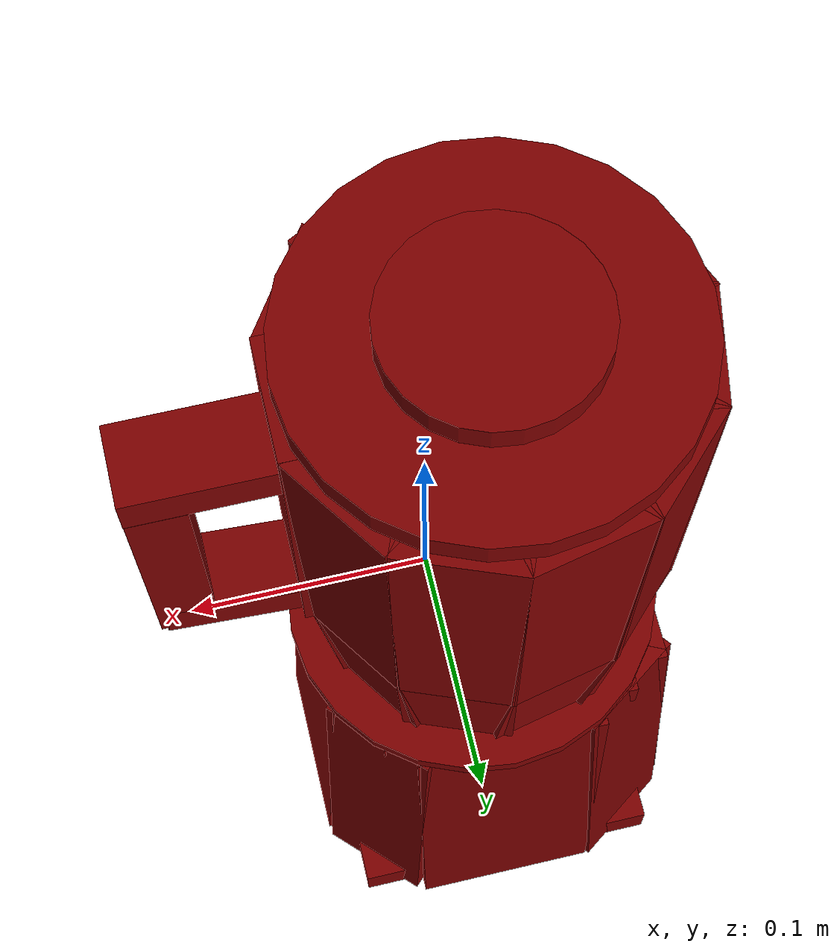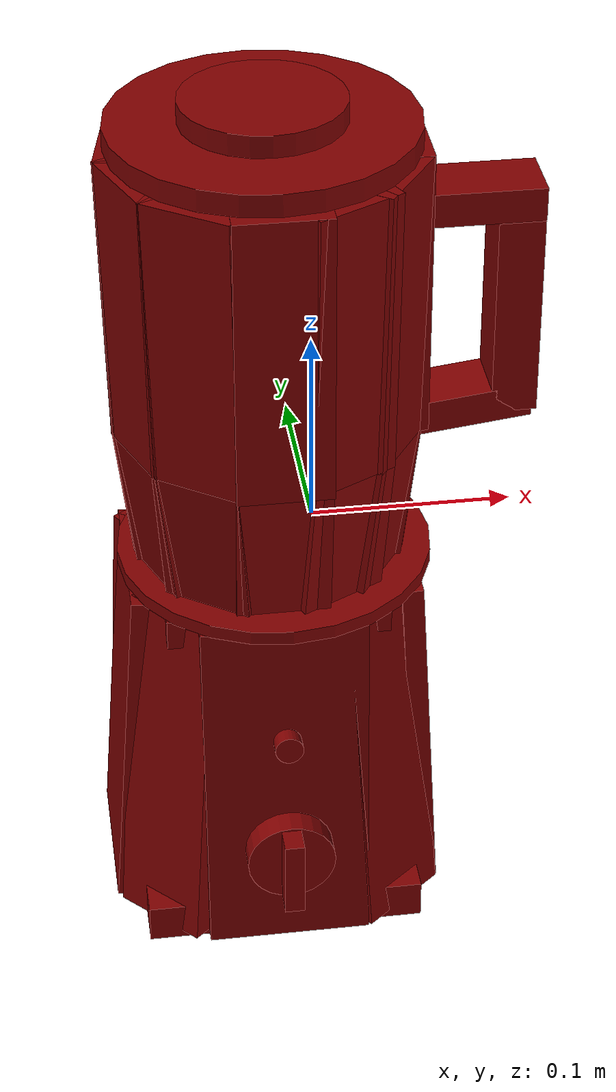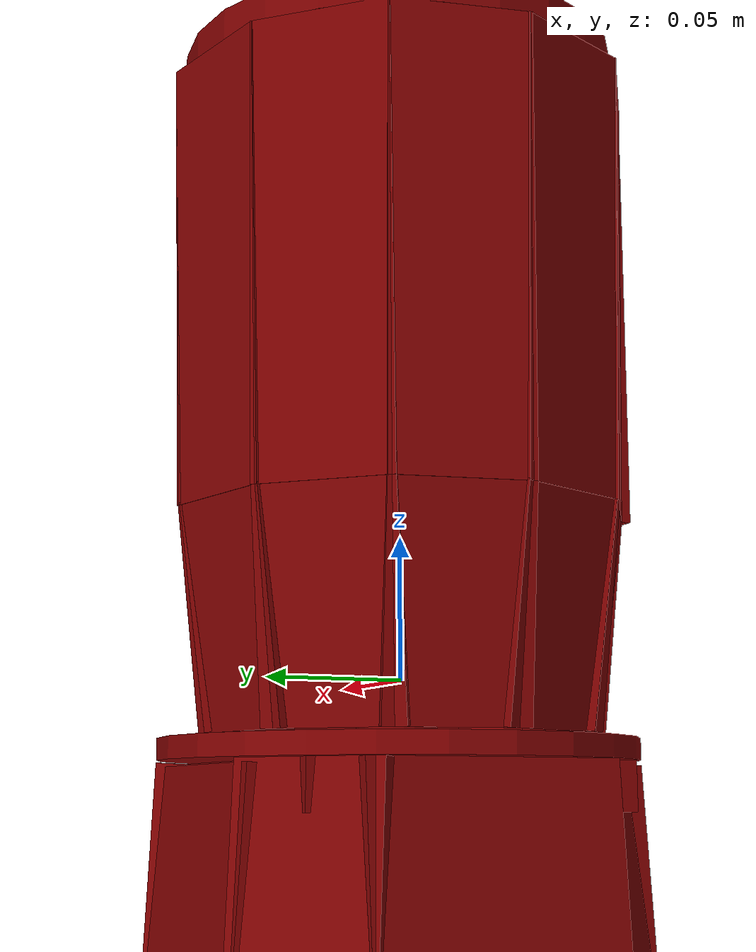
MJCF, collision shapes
<?xml version='1.0' encoding='UTF-8'?>
<mujoco model="model">
  <option timestep="0.002" gravity="0.0 0.0 -9.81"/>
  <compiler angle="radian"/>
  <asset>
    <mesh file="visuals/Blade001.obj" name="Blade001_vis"/>
    <mesh file="visuals/Body001.obj" name="Body001_vis"/>
    <mesh file="visuals/Button001.obj" name="Button001_vis"/>
    <mesh file="visuals/Jug001.obj" name="Jug001_vis"/>
    <mesh file="visuals/Jug001_Clear.obj" name="Jug001_Clear_vis"/>
    <mesh file="visuals/Knob001.obj" name="Knob001_vis"/>
    <mesh file="visuals/Lid001.obj" name="Lid001_vis"/>
    <texture file="visuals/T_BC001.png" name="Body001_material" type="2d"/>
    <material name="Body001_material" rgba="1 1 1 1.0" texture="Body001_material" shininess="0.1" specular="2"/>
    <texture file="visuals/T_BC001.png" name="Button001_material" type="2d"/>
    <material name="Button001_material" rgba="1 1 1 1.0" texture="Button001_material" shininess="0.4472135901451111" specular="0.3103448502657381"/>
    <material name="Jug001_Clear_material" rgba="0.5881999731063843 0.5881999731063843 0.5881999731063843 0.800000011920929" shininess="0.10000002384185791" specular="0.33333333333333337"/>
    <texture file="visuals/T_BC001.png" name="Jug001_material" type="2d"/>
    <material name="Jug001_material" rgba="1 1 1 1.0" texture="Jug001_material" shininess="0.4472135901451111" specular="0.3103448502657381"/>
    <texture file="visuals/T_BC001.png" name="Blade001_material" type="2d"/>
    <material name="Blade001_material" rgba="1 1 1 1.0" texture="Blade001_material" shininess="0.4472135901451111" specular="0.3103448502657381"/>
    <texture file="visuals/T_BC001.png" name="Lid001_material" type="2d"/>
    <material name="Lid001_material" rgba="1 1 1 1.0" texture="Lid001_material" shininess="0.4472135901451111" specular="0.3103448502657381"/>
    <texture file="visuals/T_BC001.png" name="Knob001_material" type="2d"/>
    <material name="Knob001_material" rgba="1 1 1 1.0" texture="Knob001_material" shininess="0.4472135901451111" specular="0.3103448502657381"/>
  </asset>
  <default>
    <default class="visual">
      <geom conaffinity="0" contype="0" group="1" type="mesh"/>
    </default>
    <default class="collision">
      <geom group="0" rgba="0.5 0 0 0.5"/>
    </default>
    <default class="spawn">
      <geom group="0" rgba="1 1 1 0.5" contype="0" conaffinity="0"/>
      <site group="0" rgba="1 1 1 0.5"/>
    </default>
    <default class="region">
      <geom group="1" conaffinity="0" contype="0" rgba="0 1 0 0"/>
    </default>
  </default>
  <worldbody>
    <body>
      <body name="object">
        <geom mesh="Body001_vis" type="mesh" solimp="0.998 0.998 0.001" solref="0.001 1" friction="0.95 0.3 0.1" class="visual" material="Body001_material"/>
        <geom class="collision" type="box" pos="-0.09515609 0.01476613 -0.12396966" size="0.0054743182845413685 0.04164137691259384 0.09551781415939331" quat="0.9992919564247131 0.0 0.03762407973408699 0.0"/>
        <geom class="collision" type="box" pos="-0.02070477 -0.05600017 -0.12523258" size="0.0054743182845413685 0.04164137691259384 0.09551780670881271" quat="0.706755518913269 -0.02228604629635811 0.02228604629635811 0.7067554593086243"/>
        <geom class="collision" type="box" pos="0.05176017 0.00713336 -0.12396966" size="0.005474318750202656 0.04164137691259384 0.09551782160997391" quat="7.546636027200293e-08 -0.028902044519782066 2.1820438789177388e-09 0.9995822310447693"/>
        <geom class="collision" type="box" pos="-0.01956251 0.08019558 -0.12528173" size="0.0054743182845413685 0.04164137691259384 0.09551781415939331" quat="0.7067351937294006 0.022921277210116386 0.02292126789689064 -0.7067351937294006"/>
        <geom class="collision" type="box" pos="-0.07630777 0.06757122 -0.12396966" size="0.005474318750202656 0.025623897090554237 0.09551780670881271" quat="0.8883739113807678 0.017228038981556892 0.03344782441854477 -0.4575764536857605"/>
        <geom class="collision" type="box" pos="0.03633293 0.06375368 -0.12396966" size="0.005474317818880081 0.025623897090554237 0.09551780670881271" quat="0.3789641857147217 0.026744501665234566 0.010957466438412666 -0.9249598979949951"/>
        <geom class="collision" type="box" pos="0.03317800 -0.04134386 -0.12396966" size="0.0054743182845413685 0.025623897090554237 0.09551780670881271" quat="0.4256477653980255 -0.04192516580224037 0.01974695920944214 0.9037014842033386"/>
        <geom class="collision" type="box" pos="-0.07742481 -0.03855716 -0.12396966" size="0.0054743182845413685 0.025623897090554237 0.09551780670881271" quat="0.9243523478507996 -0.017569629475474358 0.04288322851061821 0.37871503829956055"/>
        <geom class="collision" type="box" pos="-0.02167261 0.01204293 -0.21243714" size="0.07172341644763947 0.07172341644763947 0.01033850759267807" quat="1.0 0.0 0.0 0.0"/>
        <geom class="collision" type="box" pos="-0.02167261 0.01204293 -0.03638610" size="0.05570942535996437 0.05570942535996437 0.008030187338590622" quat="1.0 0.0 0.0 0.0"/>
        <body name="Button001">
          <joint axis="1.5750340873743372e-18 0.9929066896438599 -0.11889630556106567" pos="-0.02125863 -0.07110283 -0.08987315" limited="true" name="Button001_joint" range="0.0 0.002" type="slide" damping="1" frictionloss="1" armature=".01" stiffness="0.05" springref="-0.1"/>
          <geom mesh="Button001_vis" type="mesh" solimp="0.998 0.998 0.001" solref="0.001 1" friction="0.95 0.3 0.1" class="visual" material="Button001_material"/>
          <geom class="collision" type="cylinder" pos="-0.02125863 -0.07136320 -0.08984661" size="0.007087751291692257 0.004477208014577627" quat="0.7420973181724548 0.6702921390533447 0.0 0.0"/>
        </body>
        <body name="Jug001_Clear">
          <geom class="region" name="reg_int" type="box" pos="-0.020991910000000003 0.009911030000000001 0.111101565" size="0.03723286 0.04280246 0.09043818499999999"/>
          <joint axis="0.0 0.0 1.0" pos="0.00025000 0.00390900 0.00100350" limited="true" name="Jug001_Clear_joint" range="0.0 0.1" type="slide" damping="1" frictionloss="1" armature=".01" stiffness="0.05"/>
          <geom mesh="Jug001_Clear_vis" type="mesh" solimp="0.998 0.998 0.001" solref="0.001 1" friction="0.95 0.3 0.1" class="visual" material="Jug001_Clear_material"/>
          <geom class="collision" type="box" pos="-0.02086875 -0.05912482 0.12695498" size="0.023175854235887527 0.007076061796396971 0.07389082759618759" quat="1.0 0.0 0.0 0.0"/>
          <geom class="collision" type="box" pos="-0.02086875 -0.05295889 0.01770921" size="0.023175908252596855 0.005516691133379936 0.03700769692659378" quat="0.9981673955917358 0.060513097792863846 0.0 0.0"/>
          <geom class="collision" type="box" pos="-0.06003613 -0.04693161 0.12695498" size="0.023175911977887154 0.005516692530363798 0.07379065454006195" quat="0.9549254775047302 0.010099019855260849 -0.003137363586574793 -0.2966572344303131"/>
          <geom class="collision" type="box" pos="-0.05654230 -0.04185108 0.01770921" size="0.023175908252596855 0.005516690202057362 0.03700769692659378" quat="0.953228771686554 0.05778857693076134 -0.017952607944607735 -0.29613015055656433"/>
          <geom class="collision" type="box" pos="-0.07916146 -0.01370328 0.01770921" size="0.023175908252596855 0.005516691133379936 0.03700769692659378" quat="0.8282976746559143 0.05021476000547409 -0.03376825898885727 -0.5570108890533447"/>
          <geom class="collision" type="box" pos="-0.08487194 -0.01602906 0.12695498" size="0.023175911977887154 0.005516692530363798 0.07379065454006195" quat="0.8297720551490784 0.008775432594120502 -0.0059012724086642265 -0.558002233505249"/>
          <geom class="collision" type="box" pos="-0.08871573 0.02308562 0.12695498" size="0.023175911977887154 0.0055166929960250854 0.07379065454006195" quat="0.6369348168373108 0.006736038718372583 -0.008152233436703682 -0.7708451151847839"/>
          <geom class="collision" type="box" pos="-0.08266037 0.02192311 0.01770921" size="0.023175908252596855 0.005516691133379936 0.03700769692659378" quat="0.6358030438423157 0.03854496777057648 -0.04664872959256172 -0.7694755792617798"/>
          <geom class="collision" type="box" pos="-0.06591754 0.05396626 0.01770921" size="0.023175908252596855 0.005516690202057362 0.03700769692659378" quat="0.38814669847488403 0.023531027138233185 -0.05575042590498924 -0.9196087718009949"/>
          <geom class="collision" type="box" pos="-0.07033549 0.05826747 0.12695498" size="0.023175911977887154 0.005516692530363798 0.07379065454006195" quat="0.3888375759124756 0.004112234804779291 -0.009742825292050838 -0.9212456345558167"/>
          <geom class="collision" type="box" pos="-0.03564053 0.07754081 0.12695500" size="0.023175911977887154 0.005516692530363798 0.07379065454006195" quat="0.10804449766874313 0.0011426507262513041 -0.01051324512809515 -0.9940897822380066"/>
          <geom class="collision" type="box" pos="-0.03431587 0.07151885 0.01770921" size="0.023175908252596855 0.005516691133379936 0.03700769692659378" quat="0.1078525260090828 0.006538456305861473 -0.06015866994857788 -0.9923235177993774"/>
          <geom class="collision" type="box" pos="0.00226276 0.06859405 0.01770921" size="0.023175908252596855 0.005516691133379936 0.03700769692659378" quat="0.18596415221691132 0.011273913085460663 0.059453509747982025 0.9806913733482361"/>
          <geom class="collision" type="box" pos="0.00452003 0.07433193 0.12695500" size="0.023175911977887154 0.005516692530363798 0.07379065454006195" quat="0.1862950325012207 0.0019702031277120113 0.010389960370957851 0.9824369549751282"/>
          <geom class="collision" type="box" pos="0.03642788 0.04876017 0.12695500" size="0.023175911977887154 0.0055166929960250854 0.07379065454006195" quat="0.46849510073661804 0.00495466822758317 0.009342609904706478 0.8834028244018555"/>
          <geom class="collision" type="box" pos="0.03132352 0.04530124 0.01770921" size="0.023175908252596855 0.005516690202057362 0.03700769692659378" quat="0.4676626920700073 0.028351616114377975 0.053460318595170975 0.8818331956863403"/>
          <geom class="collision" type="box" pos="0.04214088 0.00965553 0.01770921" size="0.023175908252596855 0.005516690202057362 0.03700769692659378" quat="0.7075697779655457 0.042895764112472534 0.042682234197854996 0.7040477395057678"/>
          <geom class="collision" type="box" pos="0.04830674 0.00962476 0.12695500" size="0.00719161331653595 0.023210931569337845 0.07389082759618759" quat="1.0 0.0 0.0 0.0"/>
          <geom class="collision" type="box" pos="0.03669833 -0.02833604 0.12695500" size="0.023175911977887154 0.005516692530363798 0.07379065454006195" quat="0.8814740777015686 0.00932222418487072 0.004992946051061153 0.4721139669418335"/>
          <geom class="collision" type="box" pos="0.03156578 -0.02491909 0.01770921" size="0.023175908252596855 0.005516690202057362 0.03700769692659378" quat="0.87990802526474 0.05334360897541046 0.02857060730457306 0.4712749421596527"/>
          <geom class="collision" type="box" pos="0.00905607 -0.04541609 0.01770921" size="0.023175908252596855 0.005516691133379936 0.03700769692659378" quat="0.9677349925041199 0.058668024837970734 0.014828402549028397 0.2445959448814392"/>
          <geom class="collision" type="box" pos="0.01198580 -0.05084152 0.12695500" size="0.023175911977887154 0.005516692530363798 0.07379065454006195" quat="0.9694575071334839 0.010252689011394978 0.0025913782883435488 0.24503132700920105"/>
          <geom class="collision" type="box" pos="0.08159569 0.01001288 0.16783240" size="0.028919121250510216 0.015560505911707878 0.008479977957904339" quat="1.0 0.0 0.0 0.0"/>
          <geom class="collision" type="box" pos="0.09916771 0.01001288 0.10729443" size="0.011199488304555416 0.015560510568320751 0.051797281950712204" quat="1.0 0.0 0.0 0.0"/>
          <geom class="collision" type="box" pos="0.07771460 0.01001288 0.05714760" size="0.02946845255792141 0.015560523606836796 0.00854925811290741" quat="0.9980339407920837 0.0 -0.06267547607421875 0.0"/>
          <body name="Jug001">
            <geom mesh="Jug001_vis" type="mesh" solimp="0.998 0.998 0.001" solref="0.001 1" friction="0.95 0.3 0.1" class="visual" material="Jug001_material"/>
            <geom class="collision" type="cylinder" pos="-0.01826130 0.01058441 -0.01807209" size="0.013563878834247589 0.0030004368163645267" quat="0.70710688829422 0.0 0.0 -0.7071066498756409"/>
            <geom class="collision" type="box" pos="-0.02086875 -0.05912482 0.12695498" size="0.023175854235887527 0.007076061796396971 0.07389082759618759" quat="1.0 0.0 0.0 0.0"/>
            <geom class="collision" type="box" pos="-0.02086875 -0.05295889 0.01770921" size="0.023175908252596855 0.005516691133379936 0.03700769692659378" quat="0.9981673955917358 0.060513097792863846 0.0 0.0"/>
            <geom class="collision" type="box" pos="-0.06003613 -0.04693161 0.12695498" size="0.023175911977887154 0.005516692530363798 0.07379065454006195" quat="0.9549254775047302 0.010099019855260849 -0.003137363586574793 -0.2966572344303131"/>
            <geom class="collision" type="box" pos="-0.05654230 -0.04185108 0.01770921" size="0.023175908252596855 0.005516690202057362 0.03700769692659378" quat="0.953228771686554 0.05778857693076134 -0.017952607944607735 -0.29613015055656433"/>
            <geom class="collision" type="box" pos="-0.07916146 -0.01370328 0.01770921" size="0.023175908252596855 0.005516691133379936 0.03700769692659378" quat="0.8282976746559143 0.05021476000547409 -0.03376825898885727 -0.5570108890533447"/>
            <geom class="collision" type="box" pos="-0.08487194 -0.01602906 0.12695498" size="0.023175911977887154 0.005516692530363798 0.07379065454006195" quat="0.8297720551490784 0.008775432594120502 -0.0059012724086642265 -0.558002233505249"/>
            <geom class="collision" type="box" pos="-0.08871573 0.02308562 0.12695498" size="0.023175911977887154 0.0055166929960250854 0.07379065454006195" quat="0.6369348168373108 0.006736038718372583 -0.008152233436703682 -0.7708451151847839"/>
            <geom class="collision" type="box" pos="-0.08266037 0.02192311 0.01770921" size="0.023175908252596855 0.005516691133379936 0.03700769692659378" quat="0.6358030438423157 0.03854496777057648 -0.04664872959256172 -0.7694755792617798"/>
            <geom class="collision" type="box" pos="-0.06591754 0.05396626 0.01770921" size="0.023175908252596855 0.005516690202057362 0.03700769692659378" quat="0.38814669847488403 0.023531027138233185 -0.05575042590498924 -0.9196087718009949"/>
            <geom class="collision" type="box" pos="-0.07033549 0.05826747 0.12695498" size="0.023175911977887154 0.005516692530363798 0.07379065454006195" quat="0.3888375759124756 0.004112234804779291 -0.009742825292050838 -0.9212456345558167"/>
            <geom class="collision" type="box" pos="-0.03564053 0.07754081 0.12695500" size="0.023175911977887154 0.005516692530363798 0.07379065454006195" quat="0.10804449766874313 0.0011426507262513041 -0.01051324512809515 -0.9940897822380066"/>
            <geom class="collision" type="box" pos="-0.03431587 0.07151885 0.01770921" size="0.023175908252596855 0.005516691133379936 0.03700769692659378" quat="0.1078525260090828 0.006538456305861473 -0.06015866994857788 -0.9923235177993774"/>
            <geom class="collision" type="box" pos="0.00226276 0.06859405 0.01770921" size="0.023175908252596855 0.005516691133379936 0.03700769692659378" quat="0.18596415221691132 0.011273913085460663 0.059453509747982025 0.9806913733482361"/>
            <geom class="collision" type="box" pos="0.00452003 0.07433193 0.12695500" size="0.023175911977887154 0.005516692530363798 0.07379065454006195" quat="0.1862950325012207 0.0019702031277120113 0.010389960370957851 0.9824369549751282"/>
            <geom class="collision" type="box" pos="0.03642788 0.04876017 0.12695500" size="0.023175911977887154 0.0055166929960250854 0.07379065454006195" quat="0.46849510073661804 0.00495466822758317 0.009342609904706478 0.8834028244018555"/>
            <geom class="collision" type="box" pos="0.03132352 0.04530124 0.01770921" size="0.023175908252596855 0.005516690202057362 0.03700769692659378" quat="0.4676626920700073 0.028351616114377975 0.053460318595170975 0.8818331956863403"/>
            <geom class="collision" type="box" pos="0.04214088 0.00965553 0.01770921" size="0.023175908252596855 0.005516690202057362 0.03700769692659378" quat="0.7075697779655457 0.042895764112472534 0.042682234197854996 0.7040477395057678"/>
            <geom class="collision" type="box" pos="0.04830674 0.00962476 0.12695500" size="0.00719161331653595 0.023210931569337845 0.07389082759618759" quat="1.0 0.0 0.0 0.0"/>
            <geom class="collision" type="box" pos="0.03669833 -0.02833604 0.12695500" size="0.023175911977887154 0.005516692530363798 0.07379065454006195" quat="0.8814740777015686 0.00932222418487072 0.004992946051061153 0.4721139669418335"/>
            <geom class="collision" type="box" pos="0.03156578 -0.02491909 0.01770921" size="0.023175908252596855 0.005516690202057362 0.03700769692659378" quat="0.87990802526474 0.05334360897541046 0.02857060730457306 0.4712749421596527"/>
            <geom class="collision" type="box" pos="0.00905607 -0.04541609 0.01770921" size="0.023175908252596855 0.005516691133379936 0.03700769692659378" quat="0.9677349925041199 0.058668024837970734 0.014828402549028397 0.2445959448814392"/>
            <geom class="collision" type="box" pos="0.01198580 -0.05084152 0.12695500" size="0.023175911977887154 0.005516692530363798 0.07379065454006195" quat="0.9694575071334839 0.010252689011394978 0.0025913782883435488 0.24503132700920105"/>
            <geom class="collision" type="box" pos="0.08159569 0.01001288 0.16783240" size="0.028919121250510216 0.015560505911707878 0.008479977957904339" quat="1.0 0.0 0.0 0.0"/>
            <geom class="collision" type="box" pos="0.09916771 0.01001288 0.10729443" size="0.011199488304555416 0.015560510568320751 0.051797281950712204" quat="1.0 0.0 0.0 0.0"/>
            <geom class="collision" type="box" pos="0.07771460 0.01001288 0.05714760" size="0.02946845255792141 0.015560523606836796 0.00854925811290741" quat="0.9980339407920837 0.0 -0.06267547607421875 0.0"/>
            <geom class="collision" type="cylinder" pos="-0.01792707 0.01009008 -0.02435832" size="0.07933948934078217 0.0035974886268377304" quat="1.0 0.0 0.0 0.0"/>
            <body name="Blade001">
              <joint axis="0.0 0.0 1.0" pos="-0.01812364 0.01042146 -0.00076632" limited="false" name="Blade001_joint" range="0 360" type="hinge" damping="1" frictionloss="1" armature=".01" stiffness="0.05"/>
              <geom mesh="Blade001_vis" type="mesh" solimp="0.998 0.998 0.001" solref="0.001 1" friction="0.95 0.3 0.1" class="visual" material="Blade001_material"/>
              <geom class="collision" type="box" pos="0.00204605 0.01669492 0.00917565" size="0.0015862119616940618 0.018787633627653122 0.008514349348843098" quat="0.22424311935901642 0.4206318259239197 -0.4267450273036957 0.7685522437095642"/>
              <geom class="collision" type="box" pos="-0.04108375 0.00226118 0.00607678" size="0.0014495250070467591 0.018787631765007973 0.00851509440690279" quat="0.46829313039779663 0.6533452272415161 -0.34451261162757874 0.48492538928985596"/>
              <geom class="collision" type="box" pos="-0.01246180 -0.01041368 -0.00240662" size="0.0014507644809782505 0.018769260495901108 0.00669638067483902" quat="0.3194257915019989 -0.6354911923408508 -0.12435971200466156 -0.6918473839759827"/>
              <geom class="collision" type="box" pos="-0.02522345 0.03246708 -0.00698720" size="0.001831724657677114 0.01876925863325596 0.007409302052110434" quat="0.037183113396167755 0.6721182465553284 0.3039575219154358 0.67415452003479"/>
              <geom class="collision" type="cylinder" pos="-0.01812364 0.01042146 -0.00537061" size="0.010318148881196976 0.008342823013663292" quat="1.0 0.0 0.0 0.0"/>
            </body>
          </body>
          <body name="Lid001">
            <joint axis="0.0 0.0 1.0" pos="-0.02082776 0.01001070 0.21451221" limited="true" name="Lid001_joint" range="0.0 0.1" type="slide" damping="1" frictionloss="1" armature=".01" stiffness="0.05"/>
            <geom mesh="Lid001_vis" type="mesh" solimp="0.998 0.998 0.001" solref="0.001 1" friction="0.95 0.3 0.1" class="visual" material="Lid001_material"/>
            <geom class="collision" type="cylinder" pos="-0.02082776 0.01001070 0.20756264" size="0.07391905039548874 0.005566863343119621" quat="1.0 0.0 0.0 0.0"/>
            <geom class="collision" type="cylinder" pos="-0.02082776 0.01001070 0.21763804" size="0.039618849754333496 0.006499830633401871" quat="1.0 0.0 0.0 0.0"/>
          </body>
        </body>
        <body name="Knob001">
          <joint axis="0.0 1.0 0.0" pos="-0.02082800 -0.08041372 -0.16011650" limited="true" name="Knob001_joint" range="0.0 3.752457891787808" type="hinge" damping="0.05" armature="0.001"/>
          <geom mesh="Knob001_vis" type="mesh" solimp="0.998 0.998 0.001" solref="0.001 1" friction="0.95 0.3 0.1" class="visual" material="Knob001_material"/>
          <geom class="collision" type="cylinder" pos="-0.02082819 -0.07287767 -0.16011688" size="0.02244795672595501 0.006288353819400072" quat="0.7071068286895752 0.7071067690849304 0.0 0.0"/>
          <geom class="collision" type="box" pos="-0.02107506 -0.08411061 -0.16031808" size="0.004999999888241291 0.008138016797602177 0.02128095179796219" quat="1.0 0.0 0.0 0.0"/>
        </body>
        <geom class="region" name="reg_main" type="box" pos="-0.023092945000000004 0.009251599999999999 0.0010035000000000044" size="0.087257055 0.08420555 0.22637592"/>
      </body>
    </body>
  </worldbody>
  <actuator>
    <motor name="Button001_joint_actuator" joint="Button001_joint" gear="0.1"/>
    <motor name="Jug001_Clear_joint_actuator" joint="Jug001_Clear_joint" gear="200"/>
    <motor name="Knob001_joint_actuator" joint="Knob001_joint" gear="10"/>
    <motor name="Lid001_joint_actuator" joint="Lid001_joint" gear="20"/>
    <motor name="Blade001_joint_actuator" joint="Blade001_joint" gear="10"/>
  </actuator>
</mujoco>
